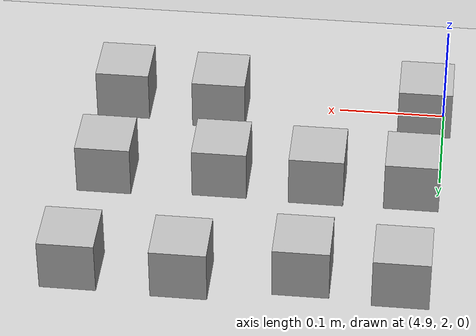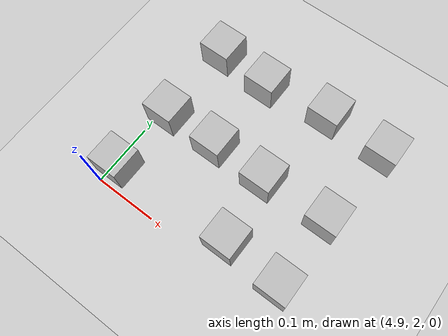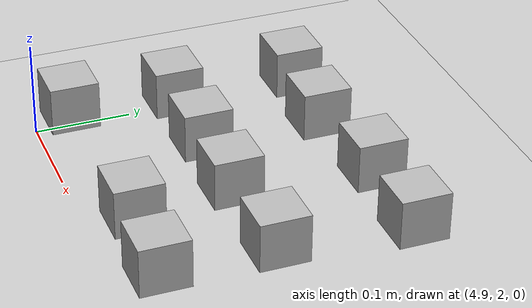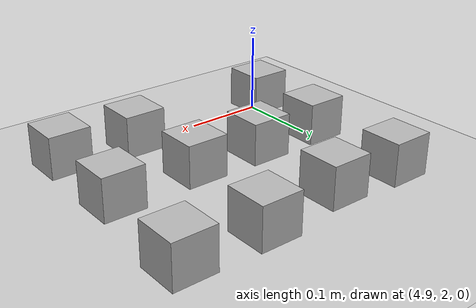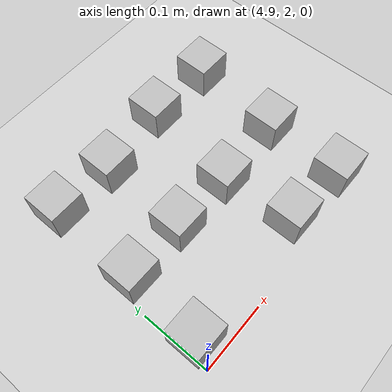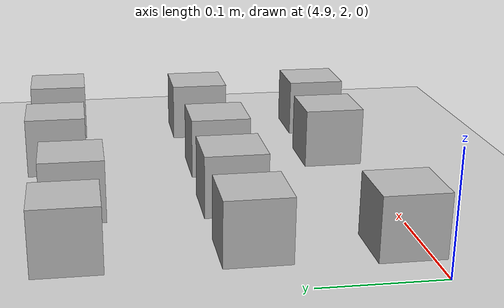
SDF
<sdf version="1.6">
 <world name="default">
  <model name="ground_plane">
   <static>1</static>
   <link name="link">
    <collision name="collision">
     <geometry><plane><normal>0 0 1</normal><size>100 100</size></plane></geometry>
     <surface><friction><ode><mu>100</mu><mu2>50</mu2></ode></friction></surface>
    </collision>
    <visual name="visual">
     <cast_shadows>0</cast_shadows>
     <geometry><plane><normal>0 0 1</normal><size>100 100</size></plane></geometry>
     <material>
      <script><uri>file://media/materials/scripts/gazebo.material</uri><name>Gazebo/Grey</name></script>
     </material>
    </visual>
   </link>
  </model>
  <model name="at0_13">
   <static>0</static>
   <link name="link">
    <inertial>
     <mass>0.01</mass>
     <inertia><ixx>4e-05</ixx><ixy>0</ixy><ixz>0</ixz><iyy>4e-05</iyy><iyz>0</iyz><izz>4e-05</izz></inertia>
    </inertial>
    <visual name="visual">
     <geometry><box><size>0.05 0.05 0.05</size></box></geometry>
     <material>
      <script>
       <uri>model://at0/materials/scripts</uri>
       <uri>model://at0/materials/textures</uri>
       <name>at0/Diffuse</name>
      </script>
     </material>
    </visual>
    <collision name="collision">
     <geometry><box><size>0.05 0.05 0.05</size></box></geometry>
     <surface><friction><ode><mu>0.8</mu><mu2>0.7</mu2></ode></friction></surface>
    </collision>
   </link>
   <pose>4.91775 2.0321 0.045 0 -0 0</pose>
  </model>
  <model name="at0_14">
   <static>0</static>
   <link name="link">
    <inertial>
     <mass>0.01</mass>
     <inertia><ixx>4e-05</ixx><ixy>0</ixy><ixz>0</ixz><iyy>4e-05</iyy><iyz>0</iyz><izz>4e-05</izz></inertia>
    </inertial>
    <visual name="visual">
     <geometry><box><size>0.05 0.05 0.05</size></box></geometry>
     <material>
      <script>
       <uri>model://at0/materials/scripts</uri>
       <uri>model://at0/materials/textures</uri>
       <name>at0/Diffuse</name>
      </script>
     </material>
    </visual>
    <collision name="collision">
     <geometry><box><size>0.05 0.05 0.05</size></box></geometry>
     <surface><friction><ode><mu>0.8</mu><mu2>0.7</mu2></ode></friction></surface>
    </collision>
   </link>
   <pose>5.11198 2.03767 0.045 0 -0 0</pose>
  </model>
  <model name="at0_16">
   <static>0</static>
   <link name="link">
    <inertial>
     <mass>0.01</mass>
     <inertia><ixx>4e-05</ixx><ixy>0</ixy><ixz>0</ixz><iyy>4e-05</iyy><iyz>0</iyz><izz>4e-05</izz></inertia>
    </inertial>
    <visual name="visual">
     <geometry><box><size>0.05 0.05 0.05</size></box></geometry>
     <material>
      <script>
       <uri>model://at0/materials/scripts</uri>
       <uri>model://at0/materials/textures</uri>
       <name>at0/Diffuse</name>
      </script>
     </material>
    </visual>
    <collision name="collision">
     <geometry><box><size>0.05 0.05 0.05</size></box></geometry>
     <surface><friction><ode><mu>0.8</mu><mu2>0.7</mu2></ode></friction></surface>
    </collision>
   </link>
   <pose>5.20401 2.03143 0.045 0 -0 0</pose>
  </model>
  <model name="at0_18">
   <static>0</static>
   <link name="link">
    <inertial>
     <mass>0.01</mass>
     <inertia><ixx>4e-05</ixx><ixy>0</ixy><ixz>0</ixz><iyy>4e-05</iyy><iyz>0</iyz><izz>4e-05</izz></inertia>
    </inertial>
    <visual name="visual">
     <geometry><box><size>0.05 0.05 0.05</size></box></geometry>
     <material>
      <script>
       <uri>model://at0/materials/scripts</uri>
       <uri>model://at0/materials/textures</uri>
       <name>at0/Diffuse</name>
      </script>
     </material>
    </visual>
    <collision name="collision">
     <geometry><box><size>0.05 0.05 0.05</size></box></geometry>
     <surface><friction><ode><mu>0.8</mu><mu2>0.7</mu2></ode></friction></surface>
    </collision>
   </link>
   <pose>5.01128 2.14067 0.045 0 -0 0</pose>
  </model>
  <model name="at0_20">
   <static>0</static>
   <link name="link">
    <inertial>
     <mass>0.01</mass>
     <inertia><ixx>4e-05</ixx><ixy>0</ixy><ixz>0</ixz><iyy>4e-05</iyy><iyz>0</iyz><izz>4e-05</izz></inertia>
    </inertial>
    <visual name="visual">
     <geometry><box><size>0.05 0.05 0.05</size></box></geometry>
     <material>
      <script>
       <uri>model://at0/materials/scripts</uri>
       <uri>model://at0/materials/textures</uri>
       <name>at0/Diffuse</name>
      </script>
     </material>
    </visual>
    <collision name="collision">
     <geometry><box><size>0.05 0.05 0.05</size></box></geometry>
     <surface><friction><ode><mu>0.8</mu><mu2>0.7</mu2></ode></friction></surface>
    </collision>
   </link>
   <pose>5.01438 2.26492 0.045 0 -0 0</pose>
  </model>
  <model name="at0_21">
   <static>0</static>
   <link name="link">
    <inertial>
     <mass>0.01</mass>
     <inertia><ixx>4e-05</ixx><ixy>0</ixy><ixz>0</ixz><iyy>4e-05</iyy><iyz>0</iyz><izz>4e-05</izz></inertia>
    </inertial>
    <visual name="visual">
     <geometry><box><size>0.05 0.05 0.05</size></box></geometry>
     <material>
      <script>
       <uri>model://at0/materials/scripts</uri>
       <uri>model://at0/materials/textures</uri>
       <name>at0/Diffuse</name>
      </script>
     </material>
    </visual>
    <collision name="collision">
     <geometry><box><size>0.05 0.05 0.05</size></box></geometry>
     <surface><friction><ode><mu>0.8</mu><mu2>0.7</mu2></ode></friction></surface>
    </collision>
   </link>
   <pose>4.9246 2.1401 0.045 0 -0 0</pose>
  </model>
  <model name="at0_27">
   <static>0</static>
   <link name="link">
    <inertial>
     <mass>0.01</mass>
     <inertia><ixx>4e-05</ixx><ixy>0</ixy><ixz>0</ixz><iyy>4e-05</iyy><iyz>0</iyz><izz>4e-05</izz></inertia>
    </inertial>
    <visual name="visual">
     <geometry><box><size>0.05 0.05 0.05</size></box></geometry>
     <material>
      <script>
       <uri>model://at0/materials/scripts</uri>
       <uri>model://at0/materials/textures</uri>
       <name>at0/Diffuse</name>
      </script>
     </material>
    </visual>
    <collision name="collision">
     <geometry><box><size>0.05 0.05 0.05</size></box></geometry>
     <surface><friction><ode><mu>0.8</mu><mu2>0.7</mu2></ode></friction></surface>
    </collision>
   </link>
   <pose>5.0998 2.13918 0.045 0 -0 0</pose>
  </model>
  <model name="at0_31">
   <static>0</static>
   <link name="link">
    <inertial>
     <mass>0.01</mass>
     <inertia><ixx>4e-05</ixx><ixy>0</ixy><ixz>0</ixz><iyy>4e-05</iyy><iyz>0</iyz><izz>4e-05</izz></inertia>
    </inertial>
    <visual name="visual">
     <geometry><box><size>0.05 0.05 0.05</size></box></geometry>
     <material>
      <script>
       <uri>model://at0/materials/scripts</uri>
       <uri>model://at0/materials/textures</uri>
       <name>at0/Diffuse</name>
      </script>
     </material>
    </visual>
    <collision name="collision">
     <geometry><box><size>0.05 0.05 0.05</size></box></geometry>
     <surface><friction><ode><mu>0.8</mu><mu2>0.7</mu2></ode></friction></surface>
    </collision>
   </link>
   <pose>4.92745 2.27021 0.045 0 -0 0</pose>
  </model>
  <model name="at0_32">
   <static>0</static>
   <link name="link">
    <inertial>
     <mass>0.01</mass>
     <inertia><ixx>4e-05</ixx><ixy>0</ixy><ixz>0</ixz><iyy>4e-05</iyy><iyz>0</iyz><izz>4e-05</izz></inertia>
    </inertial>
    <visual name="visual">
     <geometry><box><size>0.05 0.05 0.05</size></box></geometry>
     <material>
      <script>
       <uri>model://at0/materials/scripts</uri>
       <uri>model://at0/materials/textures</uri>
       <name>at0/Diffuse</name>
      </script>
     </material>
    </visual>
    <collision name="collision">
     <geometry><box><size>0.05 0.05 0.05</size></box></geometry>
     <surface><friction><ode><mu>0.8</mu><mu2>0.7</mu2></ode></friction></surface>
    </collision>
   </link>
   <pose>5.11949 2.27753 0.045 0 -0 0</pose>
  </model>
  <model name="at0_34">
   <static>0</static>
   <link name="link">
    <inertial>
     <mass>0.01</mass>
     <inertia><ixx>4e-05</ixx><ixy>0</ixy><ixz>0</ixz><iyy>4e-05</iyy><iyz>0</iyz><izz>4e-05</izz></inertia>
    </inertial>
    <visual name="visual">
     <geometry><box><size>0.05 0.05 0.05</size></box></geometry>
     <material>
      <script>
       <uri>model://at0/materials/scripts</uri>
       <uri>model://at0/materials/textures</uri>
       <name>at0/Diffuse</name>
      </script>
     </material>
    </visual>
    <collision name="collision">
     <geometry><box><size>0.05 0.05 0.05</size></box></geometry>
     <surface><friction><ode><mu>0.8</mu><mu2>0.7</mu2></ode></friction></surface>
    </collision>
   </link>
   <pose>5.20563 2.14353 0.045 0 -0 0</pose>
  </model>
  <model name="at0_35">
   <static>0</static>
   <link name="link">
    <inertial>
     <mass>0.01</mass>
     <inertia><ixx>4e-05</ixx><ixy>0</ixy><ixz>0</ixz><iyy>4e-05</iyy><iyz>0</iyz><izz>4e-05</izz></inertia>
    </inertial>
    <visual name="visual">
     <geometry><box><size>0.05 0.05 0.05</size></box></geometry>
     <material>
      <script>
       <uri>model://at0/materials/scripts</uri>
       <uri>model://at0/materials/textures</uri>
       <name>at0/Diffuse</name>
      </script>
     </material>
    </visual>
    <collision name="collision">
     <geometry><box><size>0.05 0.05 0.05</size></box></geometry>
     <surface><friction><ode><mu>0.8</mu><mu2>0.7</mu2></ode></friction></surface>
    </collision>
   </link>
   <pose>5.21715 2.27576 0.045 0 -0 0</pose>
  </model>
 </world>
</sdf>
